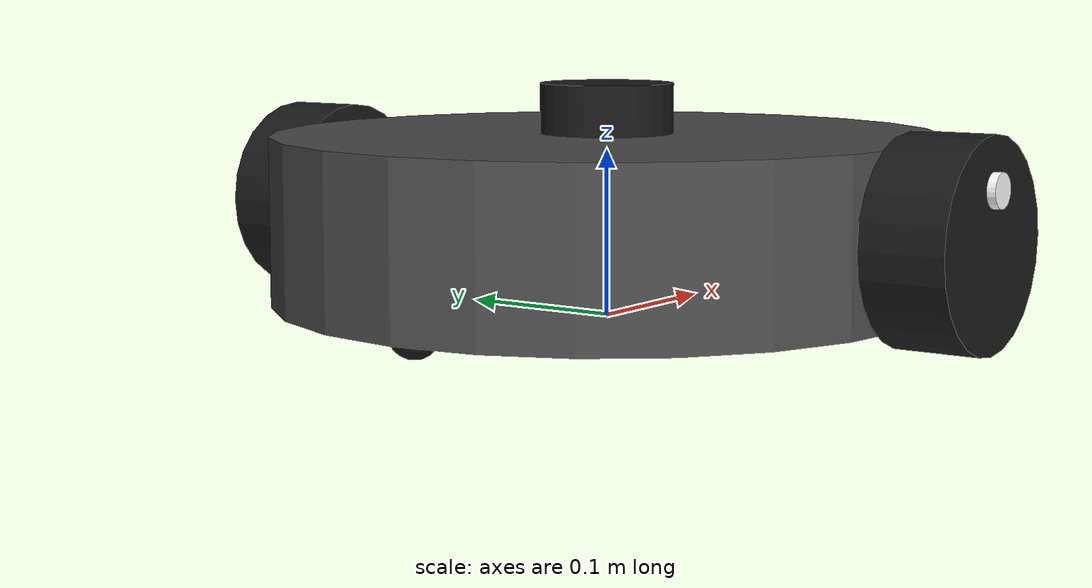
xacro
<?xml version="1.0"?>
<robot name="lex_robot" xmlns:xacro="http://www.ros.org/wiki/xacro">

    <!-- Include components -->
    <xacro:include filename="$(find lex_simulation)/urdf/lex_base/common/wheel.xacro" />
    <xacro:include filename="$(find lex_simulation)/urdf/lex_base/common/caster_wheel.xacro" />
    <xacro:include filename="$(find lex_simulation)/urdf/lex_base/sensors/lidar.xacro" />
    <xacro:include filename="$(find lex_simulation)/urdf/lex_base/control/diff_drive.xacro" />

    <!-- Robot parameters -->
    <xacro:property name="body_radius" value="0.2" />
    <xacro:property name="body_height" value="0.1" />
    <xacro:property name="wheel_radius" value="0.06" />
    <xacro:property name="wheel_width" value="0.05" />
    <xacro:property name="caster_radius" value="0.015" />

    <!-- Materials -->
    <material name="body_color">
        <color rgba="0.3 0.3 0.3 1.0" />
    </material>
    <material name="wheel_color">
        <color rgba="0.1 0.1 0.1 1.0" />
    </material>

<!-- Base Footprint -->
    <link name="base_footprint" />

    <joint name="base_footprint_joint" type="fixed">
        <parent link="base_footprint" />
        <child link="base_link" />
        <origin xyz="0 0 ${wheel_radius - body_height/2}" rpy="0 0 0" />
    </joint>

<!-- Base Link -->
    <link name="base_link">
        <visual>
            <geometry>
                <cylinder radius="${body_radius}" length="${body_height}" />
            </geometry>
            <origin xyz="0 0 ${body_height/2}" rpy="0 0 0" />
            <material name="body_color" />
        </visual>
        <collision>
            <geometry>
                <cylinder radius="${body_radius}" length="${body_height}" />
            </geometry>
            <origin xyz="0 0 ${body_height/2}" rpy="0 0 0" />
        </collision>
        <inertial>
            <mass value="15.0" />
            <origin xyz="0 0 ${body_height/2}" rpy="0 0 0" />
            <inertia ixx="0.02" ixy="0.0" ixz="0.0"
                     iyy="0.02" iyz="0.0"
                     izz="0.03" />
        </inertial>
    </link>

<!-- Base Eye -->
    <joint name="base_eye_left_joint" type="fixed">
        <parent link="base_link" />
        <child link="base_eye_left_link" />
        <origin xyz="${body_radius} ${body_radius/2} ${body_height/2}" rpy="0 1.578 0" />
    </joint>

    <link name="base_eye_left_link">
        <visual>
            <geometry>
                <cylinder radius="0.04" length="0.01" />
            </geometry>
            <origin xyz="0 0 0" rpy="0 0 0" />
            <material name="eye_left_color">
                <color rgba="1.0 1.0 1.0 1.0" />
            </material>
        </visual>
        <collision>
            <geometry>
                <cylinder radius="0.04" length="0.01" />
            </geometry>
            <origin xyz="0 0 0" rpy="0 0 0" />
        </collision>
        <inertial>
            <mass value="0.1" />
            <origin xyz="0 0 0" rpy="0 0 0" />
            <inertia ixx="0.0001" ixy="0.0" ixz="0.0"
                     iyy="0.0001" iyz="0.0"
                     izz="0.0001" />
        </inertial>
    </link>

    <joint name="base_eye_right_joint" type="fixed">
        <parent link="base_link" />
        <child link="base_eye_right_link" />
        <origin xyz="${body_radius} -${body_radius/2} ${body_height/2}" rpy="0 1.578 0" />
    </joint>

    <link name="base_eye_right_link">
        <visual>
            <geometry>
                <cylinder radius="0.04" length="0.01" />
            </geometry>
            <origin xyz="0 0 0" rpy="0 0 0" />
            <material name="eye_right_color">
                <color rgba="1.0 1.0 1.0 1.0" />
            </material>
        </visual>
        <collision>
            <geometry>
                <cylinder radius="0.04" length="0.01" />
            </geometry>
            <origin xyz="0 0 0" rpy="0 0 0" />
        </collision>
        <inertial>
            <mass value="0.1" />
            <origin xyz="0 0 0" rpy="0 0 0" />
            <inertia ixx="0.0001" ixy="0.0" ixz="0.0"
                     iyy="0.0001" iyz="0.0"
                     izz="0.0001" />
        </inertial>
    </link>

<!-- Create wheels -->
    <xacro:wheel prefix="left" reflect="1" parent="base_link"
                 xyz="0 ${body_radius + wheel_width/2} ${body_height/2}" rpy="0 0 0"
                 wheel_radius="${wheel_radius}" wheel_width="${wheel_width}" />
    <xacro:wheel prefix="right" reflect="-1" parent="base_link"
                 xyz="0 ${-body_radius - wheel_width/2} ${body_height/2}" rpy="0 0 0"
                 wheel_radius="${wheel_radius}" wheel_width="${wheel_width}" />

<!-- Front and rear casters -->
    <xacro:caster_wheel prefix="front" parent="base_link"
                        xyz="${body_radius - 0.02} 0 ${-wheel_radius + body_height/2 + caster_radius}" rpy="0 0 0"
                        caster_radius="${caster_radius}" />
    <xacro:caster_wheel prefix="rear" parent="base_link"
                        xyz="${-body_radius + 0.02} 0 ${-wheel_radius + body_height/2 + caster_radius}" rpy="0 0 0"
                        caster_radius="${caster_radius}" />

<!-- Lidar sensor (on top of body) -->
    <xacro:lidar_sensor parent="base_link" xyz="0 0 ${body_height + 0.015}" rpy="0 0 0" />

<!-- Gazebo Related -->
    <gazebo reference="base_link">
        <material>Gazebo/DarkGrey</material>
        <mu1 value="0.5" />
        <mu2 value="0.5" />
    </gazebo>

    <xacro:diff_drive_controller wheel_separation="${2 * (body_radius + wheel_width/2)}" wheel_diameter="${2 * wheel_radius}" />

</robot>

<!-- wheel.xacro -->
<robot name="wheel" xmlns:xacro="http://www.ros.org/wiki/xacro">

    <!-- Wheel macro with explicit parameters -->
    <xacro:macro name="wheel" params="prefix reflect parent xyz rpy wheel_radius wheel_width">
        <joint name="${prefix}_wheel_joint" type="continuous">
            <parent link="${parent}" />
            <child link="${prefix}_wheel" />
            <origin xyz="${xyz}" rpy="${rpy}" />
            <axis xyz="0 1 0" />
            <dynamics damping="0.1" friction="0.1" />
        </joint>

        <link name="${prefix}_wheel">
            <visual>
                <geometry>
                    <cylinder radius="${wheel_radius}" length="${wheel_width}" />
                </geometry>
                <origin xyz="0 0 0" rpy="${pi/2} 0 0" />
                <material name="wheel_color">
                    <color rgba="0.1 0.1 0.1 1.0" />
                </material>
            </visual>
            <collision>
                <geometry>
                    <cylinder radius="${wheel_radius}" length="${wheel_width}" />
                </geometry>
                <origin xyz="0 0 0" rpy="${pi/2} 0 0" />
            </collision>
            <inertial>
                <mass value="0.1" />
                <origin xyz="0 0 0" rpy="${pi/2} 0 0" />
                <inertia ixx="0.0001" ixy="0.0" ixz="0.0"
                    iyy="0.0001" iyz="0.0"
                    izz="0.0002" />
            </inertial>
        </link>

        <!-- Marker -->
        <joint name="${prefix}_marker_joint" type="fixed">
            <parent link="${prefix}_wheel" />
            <child link="${prefix}_marker_link" />
            <origin xyz="0 ${reflect*wheel_width/2} ${wheel_radius/2}" rpy="1.57 0 0" />
        </joint>

        <link name="${prefix}_marker_link">
            <visual>
                <geometry>
                    <cylinder radius="0.01" length="0.01" />
                </geometry>
                <origin xyz="0 0 0" rpy="0 0 0" />
                <material name="white">
                    <color rgba="1.0 1.0 1.0 1.0" />
                </material>
            </visual>
        </link>

        <!-- Transmission for ros_control -->
        <transmission name="${prefix}_wheel_trans">
            <type>transmission_interface/SimpleTransmission</type>
            <joint name="${prefix}_wheel_joint">
                <hardwareInterface>hardware_interface/VelocityJointInterface</hardwareInterface>
            </joint>
            <actuator name="${prefix}_wheel_motor">
                <mechanicalReduction>1</mechanicalReduction>
            </actuator>
        </transmission>

        <gazebo reference="${prefix}_wheel">
            <mu1>15.0</mu1>
            <mu2>15.0</mu2>
            <kp>1000000.0</kp>
            <kd>100.0</kd>
            <minDepth>0.001</minDepth>
            <maxVel>1.0</maxVel>
            <material>Gazebo/DarkGrey</material>
        </gazebo>
    </xacro:macro>

</robot>

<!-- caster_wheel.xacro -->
<robot name="caster_wheel" xmlns:xacro="http://www.ros.org/wiki/xacro">

    <xacro:macro name="caster_wheel" params="prefix parent xyz rpy caster_radius">
        <joint name="${prefix}_caster_joint" type="fixed">
            <parent link="${parent}" />
            <child link="${prefix}_caster" />
            <origin xyz="${xyz}" rpy="${rpy}" />
        </joint>

        <link name="${prefix}_caster">
            <visual>
                <geometry>
                    <sphere radius="${caster_radius}" />
                </geometry>
                <material name="wheel_color">
                    <color rgba="0.1 0.1 0.1 1.0" />
                </material>
            </visual>
            <collision>
                <geometry>
                    <sphere radius="${caster_radius}" />
                </geometry>
            </collision>
            <inertial>
                <mass value="0.01" />
                <origin xyz="0 0 0" rpy="0 0 0" />
                <inertia ixx="0.000001" ixy="0.0" ixz="0.0"
                         iyy="0.000001" iyz="0.0"
                         izz="0.000001" />
            </inertial>
        </link>

        <gazebo reference="${prefix}_caster">
            <mu1>0.0</mu1>
            <mu2>0.0</mu2>
            <kp>1000000.0</kp>
            <kd>100.0</kd>
            <minDepth>0.001</minDepth>
            <maxVel>1.0</maxVel>
            <material>Gazebo/Grey</material>
        </gazebo>
    </xacro:macro>

</robot>

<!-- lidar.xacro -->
<robot name="lidar_sensor" xmlns:xacro="http://www.ros.org/wiki/xacro">

    <!-- Lidar sensor macro with configurable position -->
    <xacro:macro name="lidar_sensor" params="parent xyz rpy">

        <!-- Joint connecting lidar to base -->
        <joint name="lidar_joint" type="fixed">
            <parent link="${parent}" />
            <child link="lidar_link" />
            <origin xyz="${xyz}" rpy="${rpy}" />
        </joint>

        <!-- Lidar Link -->
        <link name="lidar_link">
            <visual>
                <geometry>
                    <cylinder radius="0.04" length="0.03" />
                </geometry>
                <material name="lidar_color">
                    <color rgba="0.1 0.1 0.1 1.0" />
                </material>
            </visual>
            <collision>
                <geometry>
                    <cylinder radius="0.04" length="0.03" />
                </geometry>
            </collision>
            <inertial>
                <mass value="0.05" />
                <origin xyz="0 0 0" rpy="0 0 0" />
                <inertia ixx="0.00001" ixy="0.0" ixz="0.0"
                         iyy="0.00001" iyz="0.0"
                         izz="0.00001" />
            </inertial>
        </link>

        <!-- Gazebo Lidar Plugin -->
        <gazebo reference="lidar_link">
            <sensor type="ray" name="lidar_sensor">
                <pose>0 0 0 0 0 0</pose>
                <visualize>false</visualize>
                <update_rate>10</update_rate>
                <ray>
                    <scan>
                        <horizontal>
                            <samples>360</samples>
                            <resolution>1</resolution>
                            <min_angle>-3.14159</min_angle>
                            <max_angle>3.14159</max_angle>
                        </horizontal>
                    </scan>
                    <range>
                        <min>0.1</min>
                        <max>30.0</max>
                        <resolution>0.01</resolution>
                    </range>
                    <noise>
                        <type>gaussian</type>
                        <mean>0.0</mean>
                        <stddev>0.01</stddev>
                    </noise>
                </ray>
                <plugin name="gazebo_ros_lidar" filename="libgazebo_ros_laser.so">
                    <topicName>/scan</topicName>
                    <frameName>lidar_link</frameName>
                </plugin>
            </sensor>
            <material>Gazebo/Black</material>
        </gazebo>

    </xacro:macro>

</robot>
